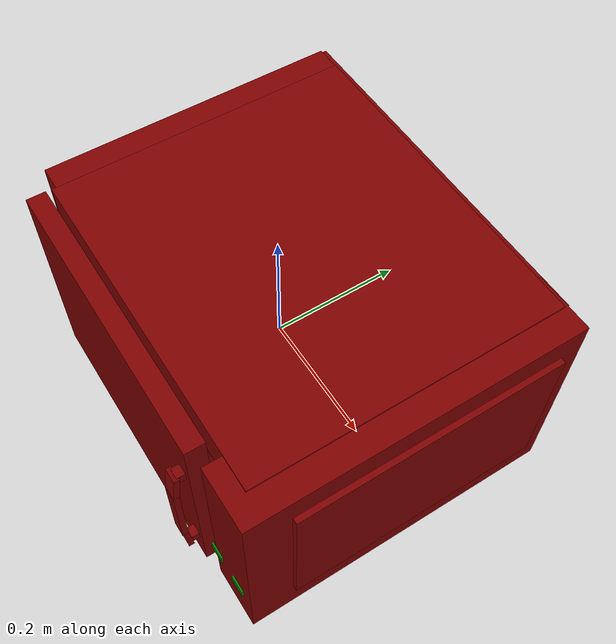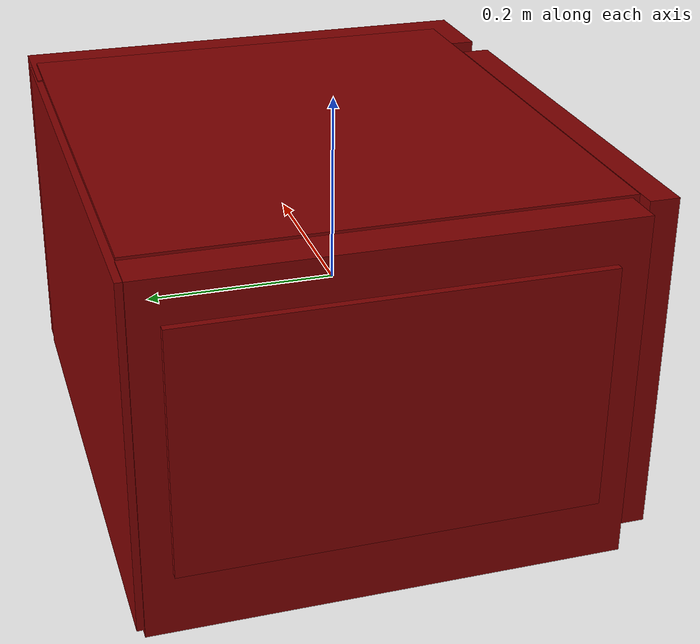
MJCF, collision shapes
<mujoco model="model">
  <compiler angle="radian"/>
  <asset>
    <mesh file="visuals/door.obj" name="door_vis"/>
    <mesh file="visuals/door_Clear.obj" name="door_Clear_vis"/>
    <mesh file="visuals/Body001.obj" name="Body001_vis"/>
    <mesh file="visuals/Disc001.obj" name="Disc001_vis"/>
    <texture file="visuals/T_BC001.png" name="Body001_material" type="2d"/>
    <material name="Body001_material" rgba="1 1 1 1.0" texture="Body001_material" shininess="0.5" specular="0.3103448502657381"/>
    <texture file="visuals/T_BC001.png" name="door_material" type="2d"/>
    <material name="door_material" rgba="1 1 1 1.0" texture="door_material" shininess="0.5" specular="0.3103448502657381"/>
    <texture file="visuals/T_BC001.png" name="door_Clear_material" type="2d"/>
    <material name="door_Clear_material" rgba="1 1 1 0.800000011920929" texture="door_Clear_material" shininess="0.5" specular="0.3103448502657381"/>
    <texture file="visuals/T_BC001.png" name="Disc001_material" type="2d"/>
    <material name="Disc001_material" rgba="1 1 1 1.0" texture="Disc001_material" shininess="0.5" specular="0.3103448502657381"/>
  </asset>
  <default>
    <default class="visual">
      <geom conaffinity="0" contype="0" group="1" type="mesh"/>
    </default>
    <default class="collision">
      <geom group="0" rgba="0.5 0 0 0.5"/>
    </default>
    <default class="spawn">
      <geom group="0" rgba="1 1 1 0.5" contype="0" conaffinity="0"/>
      <site group="0" rgba="1 1 1 0.5"/>
    </default>
    <default class="region">
      <geom group="1" conaffinity="0" contype="0" rgba="0 1 0 0"/>
    </default>
  </default>
  <worldbody>
    <body>
      <body name="object">
        <geom class="collision" type="box" pos="-0.054687 -0.015353 -0.108444" size="0.16692419350147247 0.16692419350147247 0.0016871257685124874" quat="1.0 0.0 0.0 0.0" name="tray" rgba="0 1 0 0.5"/>
        <geom class="collision" type="box" pos="0.275475 -0.238395 -0.085024" size="0.013391494750976562 0.001462264684960246 0.008388223126530647" quat="1.0 0.0 0.0 0.0" name="start_button" rgba="0.0 0.5 0 0.5"/>
        <geom class="collision" type="box" pos="0.220404 -0.238395 -0.085024" size="0.013391504064202309 0.001462264684960246 0.008388223126530647" quat="1.0 0.0 0.0 0.0" name="stop_button" rgba="0.0 0.5 0 0.5"/>
        <geom mesh="Body001_vis" type="mesh" solimp="0.998 0.998 0.001" solref="0.001 1" density="100" friction="0.95 0.3 0.1" class="visual" material="Body001_material"/>
        <geom class="collision" type="box" pos="0.000035 0.030391 0.145020" size="0.2661250829696655 0.23754170536994934 0.032885052263736725" quat="1.0 0.0 0.0 0.0"/>
        <geom class="collision" type="box" pos="-0.026850 0.030391 -0.149604" size="0.23923875391483307 0.23754189908504486 0.031994134187698364" quat="1.0 0.0 0.0 0.0"/>
        <geom class="collision" type="box" pos="-0.286781 0.034285 -0.003018" size="0.020690828561782837 0.23430147767066956 0.1781976968050003" quat="1.0 0.0 0.0 0.0"/>
        <geom class="collision" type="box" pos="-0.306803 0.035432 0.007764" size="0.008154298178851604 0.2049151062965393 0.12397702783346176" quat="1.0 0.0 0.0 0.0"/>
        <geom class="collision" type="box" pos="0.259329 0.018639 -0.003017" size="0.04693977162241936 0.25485095381736755 0.1781962662935257" quat="1.0 0.0 0.0 0.0"/>
        <geom class="collision" type="box" pos="0.307048 0.035432 0.007764" size="0.007922413758933544 0.204915389418602 0.12397721409797668" quat="1.0 0.0 0.0 0.0"/>
        <geom class="collision" type="box" pos="-0.019476 0.223335 -0.000480" size="0.2853907644748688 0.052319690585136414 0.17437268793582916" quat="1.0 0.0 0.0 0.0"/>
        <geom class="collision" type="box" pos="0.183417 -0.018543 -0.002738" size="0.0289724413305521 0.18861033022403717 0.11487241089344025" quat="1.0 0.0 0.0 0.0"/>
        <body name="door">
          <joint axis="0.0 0.0 1.0" pos="-0.285084 -0.227961 -0.005067" limited="true" name="microjoint" range="-1.5707963267948966 0.0" type="hinge" damping="1" frictionloss="1" armature=".01" stiffness="0.05"/>
          <geom mesh="door_vis" type="mesh" solimp="0.998 0.998 0.001" solref="0.001 1" density="100" friction="0.95 0.3 0.1" class="visual" material="door_material"/>
          <geom class="collision" type="box" pos="-0.043235 -0.229520 -0.002987" size="0.2293088287115097 0.014989144168794155 0.17548751831054688" quat="1.0 0.0 0.0 0.0"/>
          <geom class="collision" type="box" pos="0.168613 -0.248022 0.093380" size="0.008060116320848465 0.00935608334839344 0.007869669236242771" quat="1.0 0.0 0.0 0.0"/>
          <geom class="collision" type="box" pos="0.168613 -0.248022 -0.108349" size="0.008060122840106487 0.009356090798974037 0.007869674824178219" quat="1.0 0.0 0.0 0.0"/>
          <geom class="collision" type="box" pos="0.168613 -0.261349 0.077053" size="0.011003851890563965 0.02385994978249073 0.0042842356488108635" quat="0.6625279188156128 -0.7490372061729431 -1.6631969698859998e-16 8.487738654533709e-24"/>
          <geom class="collision" type="box" pos="0.168613 -0.264563 -0.007962" size="0.011003851890563965 0.004525520373135805 0.06267239898443222" quat="1.0 0.0 0.0 0.0" name="door_handle"/>
          <geom class="collision" type="box" pos="0.168613 -0.261602 -0.094841" size="0.011003851890563965 0.02385994978249073 0.004284236114472151" quat="0.7379992604255676 -0.6748015284538269 -1.4983606525811687e-16 2.1780897666146301e-23"/>
          <body name="door_Clear">
            <geom mesh="door_Clear_vis" type="mesh" solimp="0.998 0.998 0.001" solref="0.001 1" density="100" friction="0.95 0.3 0.1" class="visual" material="door_Clear_material"/>
            <geom class="collision" type="box" pos="-0.053572 -0.226417 -0.003663" size="0.19063909351825714 0.0018959838198497891 0.09010432660579681" quat="1.0 0.0 0.0 0.0"/>
          </body>
        </body>
        <body name="Disc001">
          <joint axis="0.0 0.0 1.0" pos="-0.054567 -0.015355 -0.120178" limited="false" name="Disc001_joint" range="0 360" type="hinge" damping="1" frictionloss="1" armature=".01" stiffness="0.05"/>
          <geom mesh="Disc001_vis" type="mesh" solimp="0.998 0.998 0.001" solref="0.001 1" density="100" friction="0.95 0.3 0.1" class="visual" material="Disc001_material"/>
          <geom class="collision" type="cylinder" pos="-0.054687 -0.015353 -0.115082" size="0.16692419350147247 0.0016871365951374173" quat="1.0 0.0 0.0 0.0"/>
        </body>
        <geom class="region" name="reg_main" type="box" pos="0.0 0.0146405 0.0" size="0.315 0.2580925 0.1775"/>
        <geom class="region" name="reg_int" type="box" pos="-0.05465400000000001 -0.015556500000000001 -0.001735500000000001" size="0.208921 0.1840215 0.1138065"/>
      </body>
    </body>
  </worldbody>
  <actuator>
    <motor name="microjoint_actuator" joint="microjoint" gear="10"/>
    <motor name="Disc001_joint_actuator" joint="Disc001_joint" gear="10"/>
  </actuator>
</mujoco>
